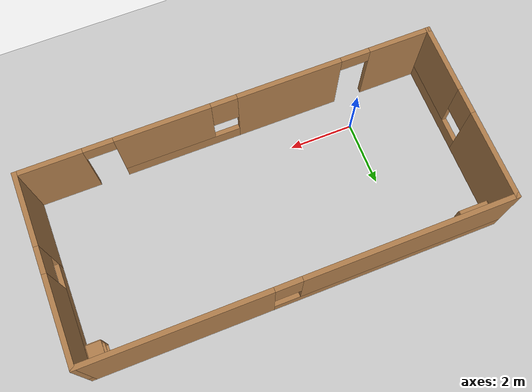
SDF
<sdf version="1.7">
 <world name="default">
  <plugin filename="gz-sim-physics-system" name="gz::sim::systems::Physics"/>
  <plugin filename="gz-sim-sensors-system" name="gz::sim::systems::Sensors">
   <render_engine>ogre2</render_engine>
  </plugin>
  <plugin filename="gz-sim-scene-broadcaster-system" name="gz::sim::systems::SceneBroadcaster"/>
  <plugin filename="gz-sim-user-commands-system" name="gz::sim::systems::UserCommands"/>
  <light name="sun" type="directional">
   <pose>0 0 10 0 -0 0</pose>
   <diffuse>0.8 0.8 0.8 1</diffuse>
   <specular>0.2 0.2 0.2 1</specular>
   <attenuation>
    <range>1000</range>
    <constant>0.9</constant>
    <linear>0.01</linear>
    <quadratic>0.001</quadratic>
   </attenuation>
   <direction>-0.5 0.1 -0.9</direction>
   <spot><inner_angle>0</inner_angle><outer_angle>0</outer_angle><falloff>0</falloff></spot>
  </light>
  <model name="ground_plane">
   <static>1</static>
   <link name="link">
    <collision name="collision">
     <geometry><plane><normal>0 0 1</normal><size>100 100</size></plane></geometry>
     <surface><friction><ode><mu>100</mu><mu2>50</mu2></ode></friction></surface>
    </collision>
    <visual name="visual">
     <cast_shadows>0</cast_shadows>
     <geometry><plane><normal>0 0 1</normal><size>100 100</size></plane></geometry>
     <material>
      <script><uri>file://media/materials/scripts/gazebo.material</uri><name>Gazebo/Grey</name></script>
     </material>
    </visual>
   </link>
  </model>
  <gravity>0 0 -9.8</gravity>
  <magnetic_field>6e-06 2.3e-05 -4.2e-05</magnetic_field>
  <atmosphere type="adiabatic"/>
  <physics type="ode">
   <max_step_size>0.001</max_step_size>
   <real_time_factor>1</real_time_factor>
   <real_time_update_rate>1000</real_time_update_rate>
  </physics>
  <scene><ambient>0.4 0.4 0.4 1</ambient><background>0.7 0.7 0.7 1</background><shadows>1</shadows></scene>
  <audio><device>default</device></audio>
  <spherical_coordinates>
   <surface_model>EARTH_WGS84</surface_model>
   <latitude_deg>0</latitude_deg>
   <longitude_deg>0</longitude_deg>
   <elevation>0</elevation>
   <heading_deg>0</heading_deg>
  </spherical_coordinates>
  <model name="test">
   <pose>3.5988 1.70755 0 0 -0 0</pose>
   <link name="Wall_1">
    <pose>-6.3 0 0 0 -0 -1.5708</pose>
    <visual name="Wall_1_Visual_0">
     <pose>-1.49673 0 1.25 0 -0 0</pose>
     <geometry><box><size>2.75654 0.15 2.5</size></box></geometry>
     <material>
      <script><uri>file://media/materials/scripts/gazebo.material</uri><name>Gazebo/Wood</name></script>
      <ambient>1 1 1 1</ambient>
     </material>
     <meta><layer>0</layer></meta>
    </visual>
    <collision name="Wall_1_Collision_0">
     <geometry><box><size>2.75654 0.15 2.5</size></box></geometry>
     <pose>-1.49673 0 1.25 0 -0 0</pose>
    </collision>
    <visual name="Wall_1_Visual_1">
     <pose>1.37827 0 0.25 0 -0 0</pose>
     <geometry><box><size>2.99346 0.15 0.5</size></box></geometry>
     <material>
      <script><uri>file://media/materials/scripts/gazebo.material</uri><name>Gazebo/Wood</name></script>
      <ambient>1 1 1 1</ambient>
     </material>
     <meta><layer>0</layer></meta>
    </visual>
    <collision name="Wall_1_Collision_1">
     <geometry><box><size>2.99346 0.15 0.5</size></box></geometry>
     <pose>1.37827 0 0.25 0 -0 0</pose>
    </collision>
    <visual name="Wall_1_Visual_2">
     <pose>1.77827 0 1.5 0 -0 0</pose>
     <geometry><box><size>2.19346 0.15 2</size></box></geometry>
     <material>
      <script><uri>file://media/materials/scripts/gazebo.material</uri><name>Gazebo/Wood</name></script>
      <ambient>1 1 1 1</ambient>
     </material>
     <meta><layer>0</layer></meta>
    </visual>
    <collision name="Wall_1_Collision_2">
     <geometry><box><size>2.19346 0.15 2</size></box></geometry>
     <pose>1.77827 0 1.5 0 -0 0</pose>
    </collision>
    <visual name="Wall_1_Visual_3">
     <pose>0.281537 0 1.9 0 -0 0</pose>
     <geometry><box><size>0.8 0.15 1.2</size></box></geometry>
     <material>
      <script><uri>file://media/materials/scripts/gazebo.material</uri><name>Gazebo/Wood</name></script>
      <ambient>1 1 1 1</ambient>
     </material>
     <meta><layer>0</layer></meta>
    </visual>
    <collision name="Wall_1_Collision_3">
     <geometry><box><size>0.8 0.15 1.2</size></box></geometry>
     <pose>0.281537 0 1.9 0 -0 0</pose>
    </collision>
   </link>
   <link name="Wall_2">
    <pose>-0 -2.8 0 0 -0 0</pose>
    <visual name="Wall_2_Visual_0">
     <pose>-5.38142 0 1.25 0 -0 0</pose>
     <geometry><box><size>1.98715 0.15 2.5</size></box></geometry>
     <material>
      <script><uri>file://media/materials/scripts/gazebo.material</uri><name>Gazebo/Wood</name></script>
      <ambient>1 1 1 1</ambient>
     </material>
     <meta><layer>0</layer></meta>
    </visual>
    <collision name="Wall_2_Collision_0">
     <geometry><box><size>1.98715 0.15 2.5</size></box></geometry>
     <pose>-5.38142 0 1.25 0 -0 0</pose>
    </collision>
    <visual name="Wall_2_Visual_1">
     <pose>-1.86463 0 1.25 0 -0 0</pose>
     <geometry><box><size>3.24643 0.15 2.5</size></box></geometry>
     <material>
      <script><uri>file://media/materials/scripts/gazebo.material</uri><name>Gazebo/Wood</name></script>
      <ambient>1 1 1 1</ambient>
     </material>
     <meta><layer>0</layer></meta>
    </visual>
    <collision name="Wall_2_Collision_1">
     <geometry><box><size>3.24643 0.15 2.5</size></box></geometry>
     <pose>-1.86463 0 1.25 0 -0 0</pose>
    </collision>
    <visual name="Wall_2_Visual_2">
     <pose>5.36711 0 1.25 0 -0 0</pose>
     <geometry><box><size>2.01579 0.15 2.5</size></box></geometry>
     <material>
      <script><uri>file://media/materials/scripts/gazebo.material</uri><name>Gazebo/Wood</name></script>
      <ambient>1 1 1 1</ambient>
     </material>
     <meta><layer>0</layer></meta>
    </visual>
    <collision name="Wall_2_Collision_2">
     <geometry><box><size>2.01579 0.15 2.5</size></box></geometry>
     <pose>5.36711 0 1.25 0 -0 0</pose>
    </collision>
    <visual name="Wall_2_Visual_3">
     <pose>1.6089 0 0.25 0 -0 0</pose>
     <geometry><box><size>3.70063 0.15 0.5</size></box></geometry>
     <material>
      <script><uri>file://media/materials/scripts/gazebo.material</uri><name>Gazebo/Wood</name></script>
      <ambient>1 1 1 1</ambient>
     </material>
     <meta><layer>0</layer></meta>
    </visual>
    <collision name="Wall_2_Collision_3">
     <geometry><box><size>3.70063 0.15 0.5</size></box></geometry>
     <pose>1.6089 0 0.25 0 -0 0</pose>
    </collision>
    <visual name="Wall_2_Visual_4">
     <pose>2.0089 0 1.5 0 -0 0</pose>
     <geometry><box><size>2.90063 0.15 2</size></box></geometry>
     <material>
      <script><uri>file://media/materials/scripts/gazebo.material</uri><name>Gazebo/Wood</name></script>
      <ambient>1 1 1 1</ambient>
     </material>
     <meta><layer>0</layer></meta>
    </visual>
    <collision name="Wall_2_Collision_4">
     <geometry><box><size>2.90063 0.15 2</size></box></geometry>
     <pose>2.0089 0 1.5 0 -0 0</pose>
    </collision>
    <visual name="Wall_2_Visual_5">
     <pose>0.158584 0 1.9 0 -0 0</pose>
     <geometry><box><size>0.8 0.15 1.2</size></box></geometry>
     <material>
      <script><uri>file://media/materials/scripts/gazebo.material</uri><name>Gazebo/Wood</name></script>
      <ambient>1 1 1 1</ambient>
     </material>
     <meta><layer>0</layer></meta>
    </visual>
    <collision name="Wall_2_Collision_5">
     <geometry><box><size>0.8 0.15 1.2</size></box></geometry>
     <pose>0.158584 0 1.9 0 -0 0</pose>
    </collision>
    <visual name="Wall_2_Visual_6">
     <pose>-3.93785 0 2.25 0 -0 0</pose>
     <geometry><box><size>0.9 0.15 0.5</size></box></geometry>
     <material>
      <script><uri>file://media/materials/scripts/gazebo.material</uri><name>Gazebo/Wood</name></script>
      <ambient>1 1 1 1</ambient>
     </material>
     <meta><layer>0</layer></meta>
    </visual>
    <collision name="Wall_2_Collision_6">
     <geometry><box><size>0.9 0.15 0.5</size></box></geometry>
     <pose>-3.93785 0 2.25 0 -0 0</pose>
    </collision>
    <visual name="Wall_2_Visual_7">
     <pose>3.90921 0 2.25 0 -0 0</pose>
     <geometry><box><size>0.9 0.15 0.5</size></box></geometry>
     <material>
      <script><uri>file://media/materials/scripts/gazebo.material</uri><name>Gazebo/Wood</name></script>
      <ambient>1 1 1 1</ambient>
     </material>
     <meta><layer>0</layer></meta>
    </visual>
    <collision name="Wall_2_Collision_7">
     <geometry><box><size>0.9 0.15 0.5</size></box></geometry>
     <pose>3.90921 0 2.25 0 -0 0</pose>
    </collision>
   </link>
   <link name="Wall_3">
    <pose>6.3 0 0 0 -0 1.5708</pose>
    <visual name="Wall_3_Visual_0">
     <pose>-1.73837 0 1.25 0 -0 0</pose>
     <geometry><box><size>2.27326 0.15 2.5</size></box></geometry>
     <material>
      <script><uri>file://media/materials/scripts/gazebo.material</uri><name>Gazebo/Wood</name></script>
      <ambient>1 1 1 1</ambient>
     </material>
     <meta><layer>0</layer></meta>
    </visual>
    <collision name="Wall_3_Collision_0">
     <geometry><box><size>2.27326 0.15 2.5</size></box></geometry>
     <pose>-1.73837 0 1.25 0 -0 0</pose>
    </collision>
    <visual name="Wall_3_Visual_1">
     <pose>1.13663 0 0.25 0 -0 0</pose>
     <geometry><box><size>3.47674 0.15 0.5</size></box></geometry>
     <material>
      <script><uri>file://media/materials/scripts/gazebo.material</uri><name>Gazebo/Wood</name></script>
      <ambient>1 1 1 1</ambient>
     </material>
     <meta><layer>0</layer></meta>
    </visual>
    <collision name="Wall_3_Collision_1">
     <geometry><box><size>3.47674 0.15 0.5</size></box></geometry>
     <pose>1.13663 0 0.25 0 -0 0</pose>
    </collision>
    <visual name="Wall_3_Visual_2">
     <pose>1.53663 0 1.5 0 -0 0</pose>
     <geometry><box><size>2.67674 0.15 2</size></box></geometry>
     <material>
      <script><uri>file://media/materials/scripts/gazebo.material</uri><name>Gazebo/Wood</name></script>
      <ambient>1 1 1 1</ambient>
     </material>
     <meta><layer>0</layer></meta>
    </visual>
    <collision name="Wall_3_Collision_2">
     <geometry><box><size>2.67674 0.15 2</size></box></geometry>
     <pose>1.53663 0 1.5 0 -0 0</pose>
    </collision>
    <visual name="Wall_3_Visual_3">
     <pose>-0.201736 0 1.9 0 -0 0</pose>
     <geometry><box><size>0.8 0.15 1.2</size></box></geometry>
     <material>
      <script><uri>file://media/materials/scripts/gazebo.material</uri><name>Gazebo/Wood</name></script>
      <ambient>1 1 1 1</ambient>
     </material>
     <meta><layer>0</layer></meta>
    </visual>
    <collision name="Wall_3_Collision_3">
     <geometry><box><size>0.8 0.15 1.2</size></box></geometry>
     <pose>-0.201736 0 1.9 0 -0 0</pose>
    </collision>
   </link>
   <link name="Wall_4">
    <pose>-0 2.8 0 0 -0 3.14159</pose>
    <visual name="Wall_4_Visual_0">
     <pose>-3.59979 0 1.25 0 -0 0</pose>
     <geometry><box><size>5.55041 0.15 2.5</size></box></geometry>
     <material>
      <script><uri>file://media/materials/scripts/gazebo.material</uri><name>Gazebo/Wood</name></script>
      <ambient>1 1 1 1</ambient>
     </material>
     <meta><layer>0</layer></meta>
    </visual>
    <collision name="Wall_4_Collision_0">
     <geometry><box><size>5.55041 0.15 2.5</size></box></geometry>
     <pose>-3.59979 0 1.25 0 -0 0</pose>
    </collision>
    <visual name="Wall_4_Visual_1">
     <pose>2.77521 0 0.25 0 -0 0</pose>
     <geometry><box><size>7.19959 0.15 0.5</size></box></geometry>
     <material>
      <script><uri>file://media/materials/scripts/gazebo.material</uri><name>Gazebo/Wood</name></script>
      <ambient>1 1 1 1</ambient>
     </material>
     <meta><layer>0</layer></meta>
    </visual>
    <collision name="Wall_4_Collision_1">
     <geometry><box><size>7.19959 0.15 0.5</size></box></geometry>
     <pose>2.77521 0 0.25 0 -0 0</pose>
    </collision>
    <visual name="Wall_4_Visual_2">
     <pose>3.17521 0 1.5 0 -0 0</pose>
     <geometry><box><size>6.39959 0.15 2</size></box></geometry>
     <material>
      <script><uri>file://media/materials/scripts/gazebo.material</uri><name>Gazebo/Wood</name></script>
      <ambient>1 1 1 1</ambient>
     </material>
     <meta><layer>0</layer></meta>
    </visual>
    <collision name="Wall_4_Collision_2">
     <geometry><box><size>6.39959 0.15 2</size></box></geometry>
     <pose>3.17521 0 1.5 0 -0 0</pose>
    </collision>
    <visual name="Wall_4_Visual_3">
     <pose>-0.424586 0 1.9 0 -0 0</pose>
     <geometry><box><size>0.8 0.15 1.2</size></box></geometry>
     <material>
      <script><uri>file://media/materials/scripts/gazebo.material</uri><name>Gazebo/Wood</name></script>
      <ambient>1 1 1 1</ambient>
     </material>
     <meta><layer>0</layer></meta>
    </visual>
    <collision name="Wall_4_Collision_3">
     <geometry><box><size>0.8 0.15 1.2</size></box></geometry>
     <pose>-0.424586 0 1.9 0 -0 0</pose>
    </collision>
   </link>
   <static>1</static>
  </model>
  <model name="bookshelf">
   <static>1</static>
   <link name="link">
    <inertial><mass>1</mass></inertial>
    <collision name="back">
     <pose>0 0.005 0.6 0 -0 0</pose>
     <geometry><box><size>0.9 0.01 1.2</size></box></geometry>
    </collision>
    <visual name="visual1">
     <pose>0 0.005 0.6 0 -0 0</pose>
     <geometry><box><size>0.9 0.01 1.2</size></box></geometry>
     <material>
      <script><uri>file://media/materials/scripts/gazebo.material</uri><name>Gazebo/Wood</name></script>
     </material>
    </visual>
    <collision name="left_side">
     <pose>0.45 -0.195 0.6 0 -0 0</pose>
     <geometry><box><size>0.02 0.4 1.2</size></box></geometry>
    </collision>
    <visual name="visual2">
     <pose>0.45 -0.195 0.6 0 -0 0</pose>
     <geometry><box><size>0.02 0.4 1.2</size></box></geometry>
     <material>
      <script><uri>file://media/materials/scripts/gazebo.material</uri><name>Gazebo/Wood</name></script>
     </material>
    </visual>
    <collision name="right_side">
     <pose>-0.45 -0.195 0.6 0 -0 0</pose>
     <geometry><box><size>0.02 0.4 1.2</size></box></geometry>
    </collision>
    <visual name="visual3">
     <pose>-0.45 -0.195 0.6 0 -0 0</pose>
     <geometry><box><size>0.02 0.4 1.2</size></box></geometry>
     <material>
      <script><uri>file://media/materials/scripts/gazebo.material</uri><name>Gazebo/Wood</name></script>
     </material>
    </visual>
    <collision name="bottom">
     <pose>0 -0.195 0.03 0 -0 0</pose>
     <geometry><box><size>0.88 0.4 0.06</size></box></geometry>
    </collision>
    <visual name="visual4">
     <pose>0 -0.195 0.03 0 -0 0</pose>
     <geometry><box><size>0.88 0.4 0.06</size></box></geometry>
     <material>
      <script><uri>file://media/materials/scripts/gazebo.material</uri><name>Gazebo/Wood</name></script>
     </material>
    </visual>
    <collision name="top">
     <pose>0 -0.195 1.19 0 -0 0</pose>
     <geometry><box><size>0.88 0.4 0.02</size></box></geometry>
    </collision>
    <visual name="visual5">
     <pose>0 -0.195 1.19 0 -0 0</pose>
     <geometry><box><size>0.88 0.4 0.02</size></box></geometry>
     <material>
      <script><uri>file://media/materials/scripts/gazebo.material</uri><name>Gazebo/Wood</name></script>
     </material>
    </visual>
    <collision name="low_shelf">
     <pose>0 -0.195 0.43 0 -0 0</pose>
     <geometry><box><size>0.88 0.4 0.02</size></box></geometry>
    </collision>
    <visual name="visual6">
     <pose>0 -0.195 0.43 0 -0 0</pose>
     <geometry><box><size>0.88 0.4 0.02</size></box></geometry>
     <material>
      <script><uri>file://media/materials/scripts/gazebo.material</uri><name>Gazebo/Wood</name></script>
     </material>
    </visual>
    <collision name="high_shelf">
     <pose>0 -0.195 0.8 0 -0 0</pose>
     <geometry><box><size>0.88 0.4 0.02</size></box></geometry>
    </collision>
    <visual name="visual7">
     <pose>0 -0.195 0.8 0 -0 0</pose>
     <geometry><box><size>0.88 0.4 0.02</size></box></geometry>
     <material>
      <script><uri>file://media/materials/scripts/gazebo.material</uri><name>Gazebo/Wood</name></script>
     </material>
    </visual>
   </link>
   <pose>-1.95159 4.46335 0 0 -0 0</pose>
  </model>
  <model name="cabinet">
   <static>1</static>
   <link name="cabinet_bottom_plate">
    <inertial>
     <pose>0 0 -1 0 -0 0</pose>
     <inertia><ixx>2.05</ixx><ixy>0</ixy><ixz>0</ixz><iyy>2.05</iyy><iyz>0</iyz><izz>2.05</izz></inertia>
     <mass>25</mass>
    </inertial>
    <collision name="cabinet_bottom_plate_geom">
     <pose>0 0 0.01 0 -0 0</pose>
     <geometry><box><size>0.45 0.45 0.02</size></box></geometry>
    </collision>
    <visual name="cabinet_bottom_plate_geom_visual">
     <pose>0 0 0.01 0 -0 0</pose>
     <geometry><box><size>0.45 0.45 0.02</size></box></geometry>
     <material>
      <script><uri>file://media/materials/scripts/gazebo.material</uri><name>Gazebo/Wood</name></script>
     </material>
    </visual>
    <collision name="cabinet_bottom_plate_geom_cabinet_back_plate">
     <pose>0.235 0 0.51 0 -0 0</pose>
     <geometry><box><size>0.02 0.45 1.02</size></box></geometry>
    </collision>
    <visual name="cabinet_bottom_plate_geom_cabinet_back_plate_visual">
     <pose>0.235 0 0.51 0 -0 0</pose>
     <geometry><box><size>0.02 0.45 1.02</size></box></geometry>
     <material>
      <script><uri>file://media/materials/scripts/gazebo.material</uri><name>Gazebo/Wood</name></script>
     </material>
    </visual>
    <collision name="cabinet_bottom_plate_geom_cabinet_left_plate">
     <pose>0 0.235 0.51 0 -0 0</pose>
     <geometry><box><size>0.45 0.02 1.02</size></box></geometry>
    </collision>
    <visual name="cabinet_bottom_plate_geom_cabinet_left_plate_visual">
     <pose>0 0.235 0.51 0 -0 0</pose>
     <geometry><box><size>0.45 0.02 1.02</size></box></geometry>
     <material>
      <script><uri>file://media/materials/scripts/gazebo.material</uri><name>Gazebo/Wood</name></script>
     </material>
    </visual>
    <collision name="cabinet_bottom_plate_geom_cabinet_middle_plate">
     <pose>0 0 0.51 0 -0 0</pose>
     <geometry><box><size>0.45 0.45 0.02</size></box></geometry>
    </collision>
    <visual name="cabinet_bottom_plate_geom_cabinet_middle_plate_visual">
     <pose>0 0 0.51 0 -0 0</pose>
     <geometry><box><size>0.45 0.45 0.02</size></box></geometry>
     <material>
      <script><uri>file://media/materials/scripts/gazebo.material</uri><name>Gazebo/Wood</name></script>
     </material>
    </visual>
    <collision name="cabinet_bottom_plate_geom_cabinet_right_plate">
     <pose>0 -0.235 0.51 0 -0 0</pose>
     <geometry><box><size>0.45 0.02 1.02</size></box></geometry>
    </collision>
    <visual name="cabinet_bottom_plate_geom_cabinet_right_plate_visual">
     <pose>0 -0.235 0.51 0 -0 0</pose>
     <geometry><box><size>0.45 0.02 1.02</size></box></geometry>
     <material>
      <script><uri>file://media/materials/scripts/gazebo.material</uri><name>Gazebo/Wood</name></script>
     </material>
    </visual>
    <collision name="cabinet_bottom_plate_geom_cabinet_top_plate">
     <pose>0 0 1.01 0 -0 0</pose>
     <geometry><box><size>0.45 0.45 0.02</size></box></geometry>
    </collision>
    <visual name="cabinet_bottom_plate_geom_cabinet_top_plate_visual">
     <pose>0 0 1.01 0 -0 0</pose>
     <geometry><box><size>0.45 0.45 0.02</size></box></geometry>
     <material>
      <script><uri>file://media/materials/scripts/gazebo.material</uri><name>Gazebo/Wood</name></script>
     </material>
    </visual>
   </link>
   <pose>9.47327 4.00535 0 0 -0 0</pose>
  </model>
 </world>
</sdf>
